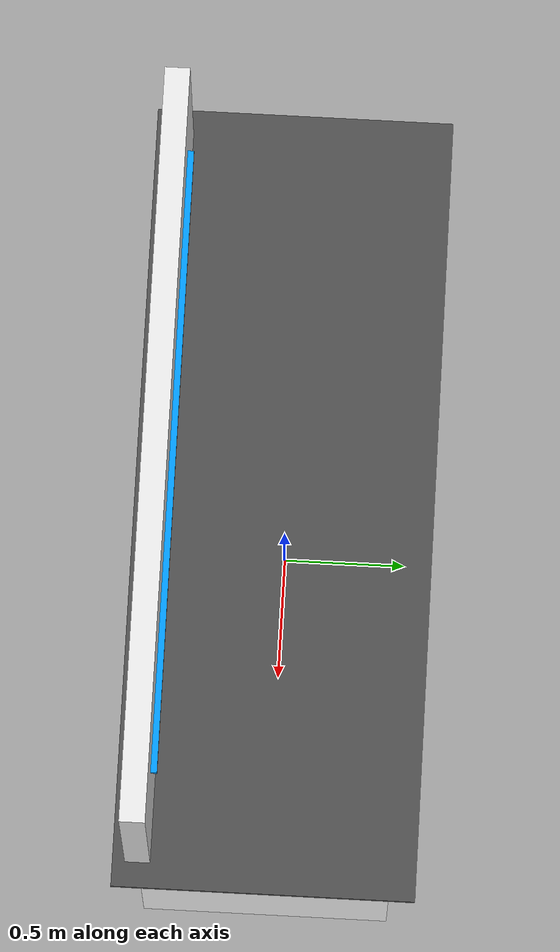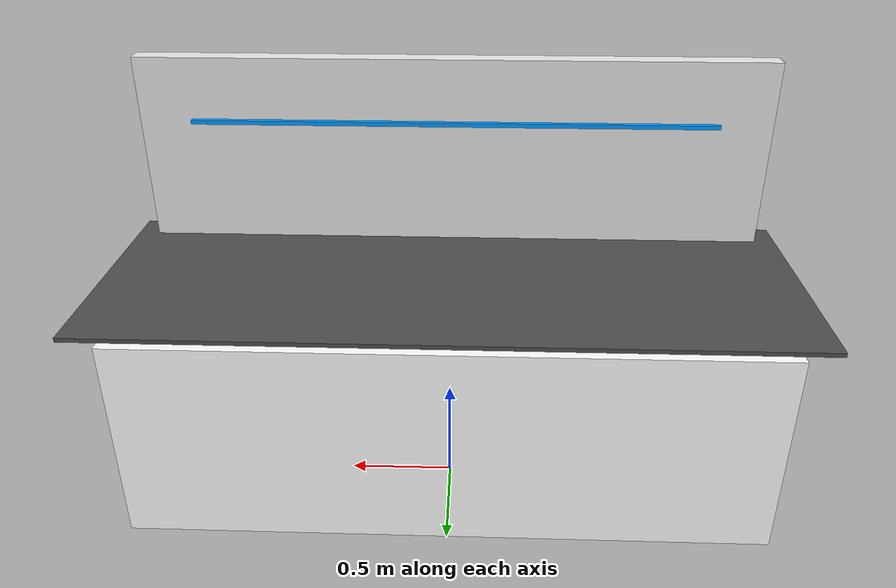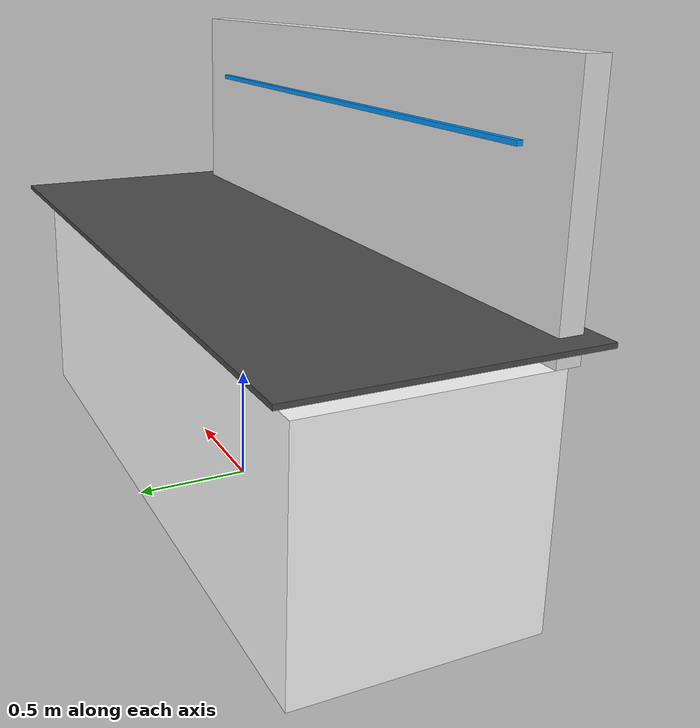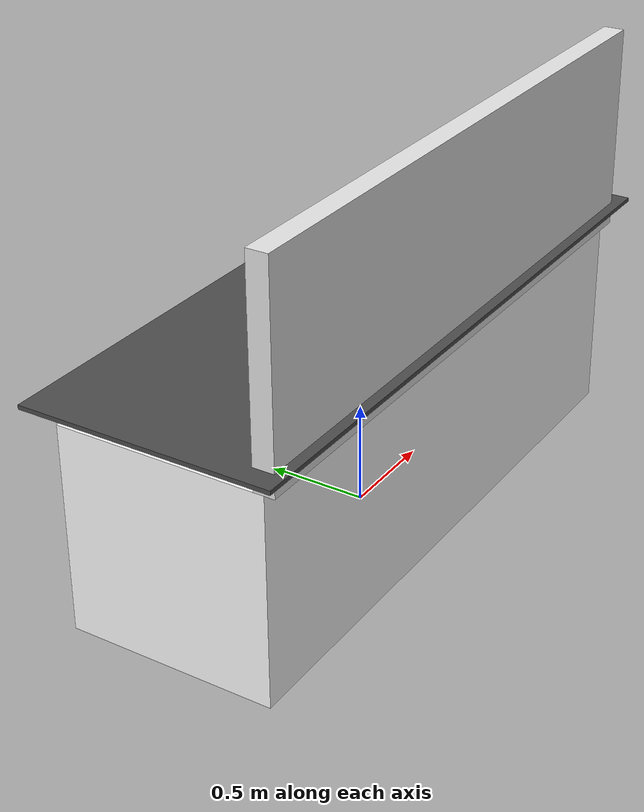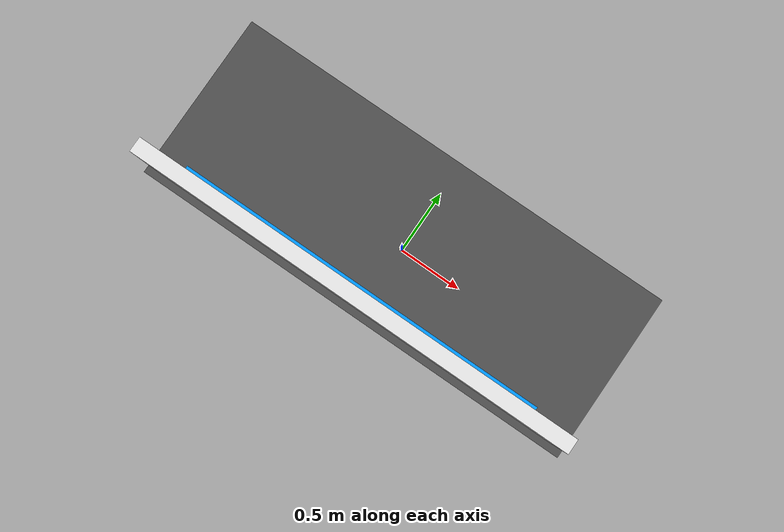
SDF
<?xml version="1.0" ?>
<sdf version="1.8">
  <model name="kitchen_hub">
    <static>true</static>
    <link name="link">
      <!-- Main Base (Pure White) -->
      <visual name="base_visual">
        <pose>0 0 0.5 0 0 0</pose>
        <geometry>
          <box><size>3.0 1.0 1.0</size></box>
        </geometry>
        <material>
          <ambient>1 1 1 1</ambient>
          <diffuse>1 1 1 1</diffuse>
          <specular>0.5 0.5 0.5 1</specular>
        </material>
      </visual>
      <collision name="base_collision">
        <pose>0 0 0.5 0 0 0</pose>
        <geometry>
          <box><size>3.0 1.0 1.0</size></box>
        </geometry>
      </collision>

      <!-- Top Counter (Brushed Silver/Dark Gray) -->
      <visual name="top_counter">
        <pose>0 0 1.1 0 0 0</pose>
        <geometry>
          <box><size>3.2 1.2 0.02</size></box>
        </geometry>
        <material>
          <ambient>0.3 0.3 0.3 1</ambient>
          <diffuse>0.3 0.3 0.3 1</diffuse>
          <specular>1 1 1 1</specular>
        </material>
      </visual>

      <!-- Back Wall (White) -->
      <visual name="back_wall">
        <pose>0 -0.5 1.5 0 0 0</pose>
        <geometry>
          <box><size>3.0 0.1 1.0</size></box>
        </geometry>
        <material>
          <ambient>0.9 0.9 0.9 1</ambient>
          <diffuse>0.9 0.9 0.9 1</diffuse>
        </material>
      </visual>

      <!-- Tech Accent (Blue Neon) -->
      <visual name="tech_accent">
        <pose>0 -0.45 1.7 0 0 0</pose>
        <geometry>
          <box><size>2.5 0.05 0.02</size></box>
        </geometry>
        <material>
          <ambient>0 0.6 1 1</ambient>
          <diffuse>0 0.6 1 1</diffuse>
          <emissive>0 0.3 0.5 1</emissive>
        </material>
      </visual>
    </link>
  </model>
</sdf>
